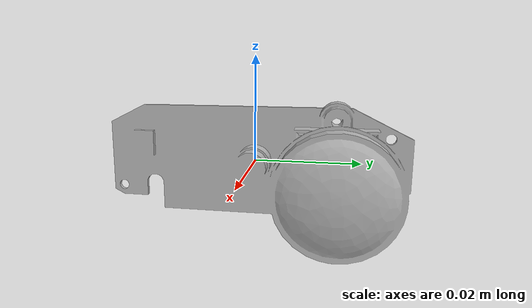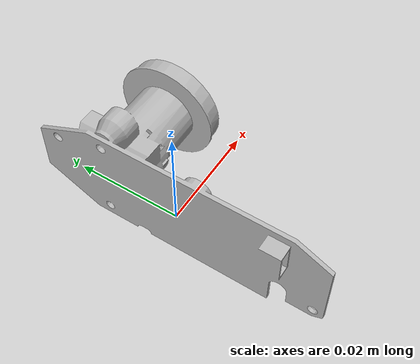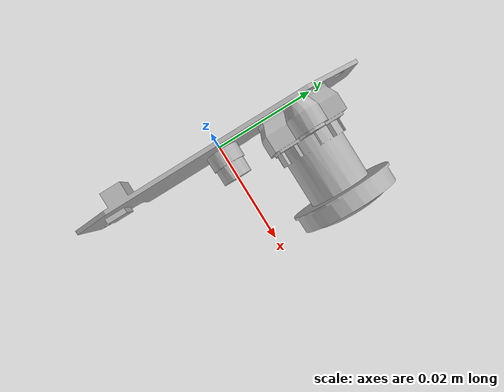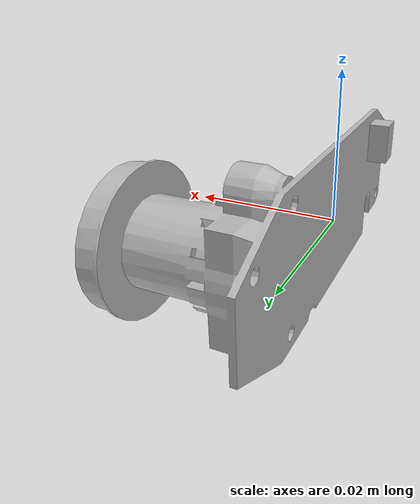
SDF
<?xml version="1.0" encoding="UTF-8"?>
<sdf version="1.9">
  <model name="brio_95_camera">
    <self_collide>false</self_collide>
    <static>false</static>

    <link name="brio_95_camera_link">
      <inertial>
        <mass>0.000001</mass>
        <inertia>
          <ixx>0.00005</ixx>
          <iyy>0.00005</iyy>
          <izz>0.00005</izz>
          <ixy>0</ixy>
          <ixz>0</ixz>
          <iyz>0</iyz>
        </inertia>
      </inertial>

      <visual name="brio_95_visual">
        <!-- Supplied mesh is already in metres and uses Gazebo camera
             convention: link-local +X is forward / the optical axis, +Z up. -->
        <geometry>
          <mesh>
            <scale>1 1 1</scale>
            <uri>model://brio_95_camera/meshes/brio_95_camera.obj</uri>
          </mesh>
        </geometry>
      </visual>

      <sensor name="imager" type="camera">
        <!-- The CAD datum is not the lens centre. The supplied optical-ray
             origin is 25.6 mm forward and 15.10 mm to link-local +Y. -->
        <pose>0.0256 0.01510 0 0 0 0</pose>
        <camera>
          <horizontal_fov>0.900108877927</horizontal_fov>
          <image>
            <width>1920</width>
            <height>1080</height>
            <format>R8G8B8</format>
          </image>
          <clip>
            <near>0.020</near>
            <far>50</far>
          </clip>
        </camera>
        <!-- Render only when a Gazebo or ROS subscriber selects this camera. -->
        <always_on>false</always_on>
        <update_rate>30</update_rate>
        <visualize>false</visualize>
      </sensor>
    </link>
  </model>
</sdf>
